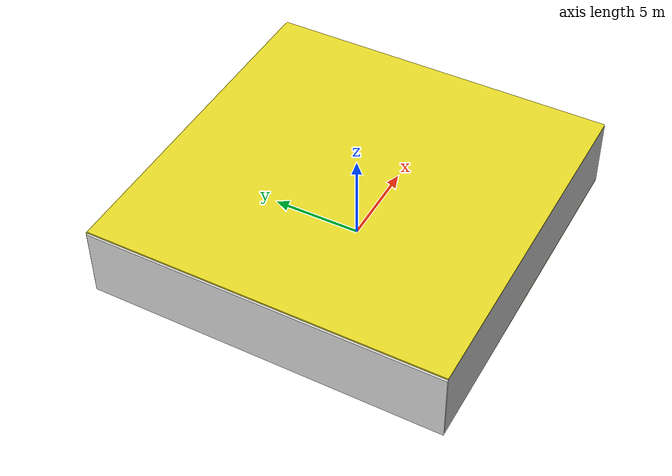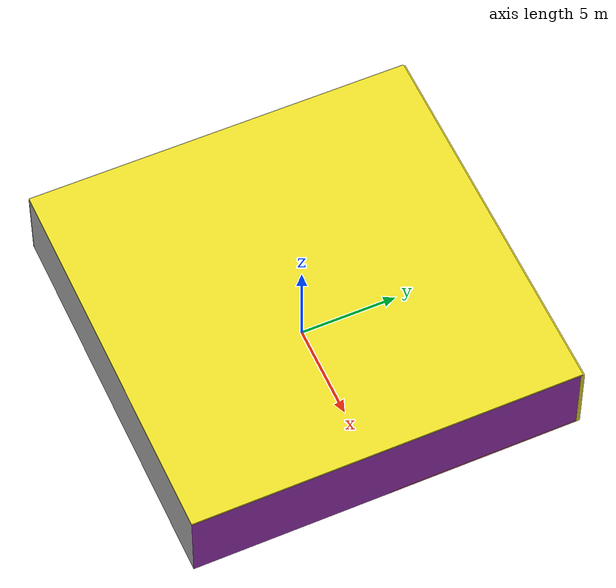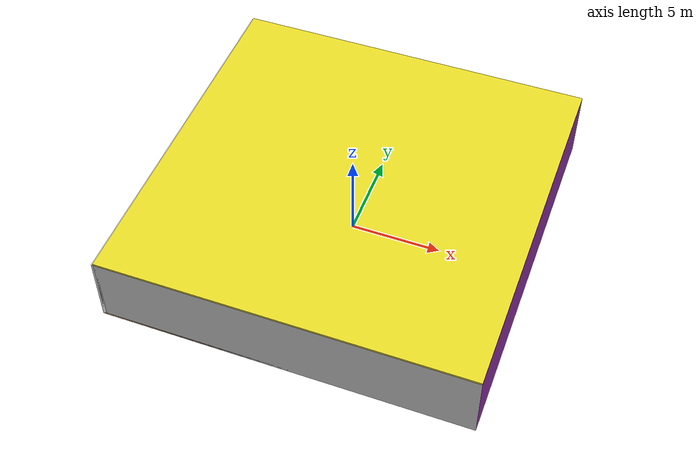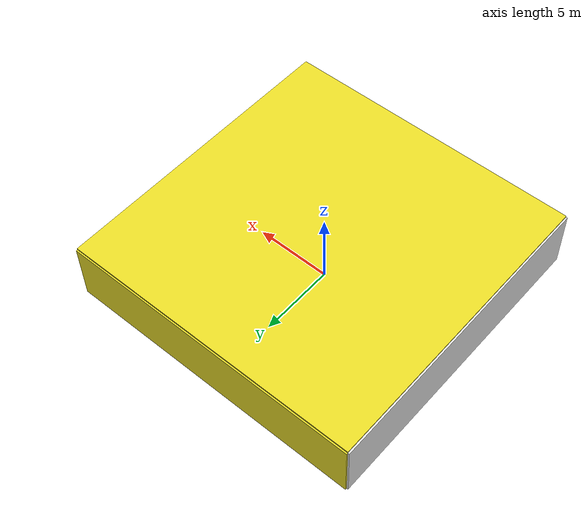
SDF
<sdf version="1.4">
 <world name="default">
  <physics type="ode">
   <max_step_size>0.001</max_step_size>
   <real_time_factor>1</real_time_factor>
   <real_time_update_rate>1000</real_time_update_rate>
   <gravity>0 0 -9.8</gravity>
  </physics>
  <scene><ambient>0.4 0.4 0.4 1</ambient><background>0.7 0.7 0.7 1</background><shadows>1</shadows></scene>
  <model name="Surrounding">
   <static>1</static>
   <link name="Ceiling">
    <collision name="Ceiling_Collision"><geometry><box><size>20 20 0.1</size></box></geometry></collision>
    <visual name="Ceiling_Visual">
     <geometry><box><size>20 20 0.1</size></box></geometry>
     <material>
      <script><uri>file://media/materials/scripts/gazebo.material</uri><name>Gazebo/Yellow</name></script>
     </material>
    </visual>
    <pose>0 0 4.05 0 0 0</pose>
   </link>
   <link name="Wall_South">
    <collision name="Wall_South_Collision">
     <geometry><box><size>20 0 4</size></box></geometry>
     <pose>0 0 2 0 -0 0</pose>
    </collision>
    <visual name="Wall_South_Visual">
     <pose>0 0 2 0 -0 0</pose>
     <geometry><box><size>20 0 4</size></box></geometry>
     <material>
      <script><uri>file://media/materials/scripts/gazebo.material</uri><name>Gazebo/LightOff</name></script>
     </material>
    </visual>
    <velocity_decay><linear>0</linear><angular>0</angular></velocity_decay>
    <pose>0 -10 0 0 -0 0</pose>
   </link>
   <link name="Wall_East">
    <collision name="Wall_21_Collision">
     <geometry><box><size>20 0 4</size></box></geometry>
     <pose>0 0 2 0 -0 0</pose>
    </collision>
    <visual name="Wall_21_Visual">
     <pose>0 0 2 0 -0 0</pose>
     <geometry><box><size>20 0 4</size></box></geometry>
     <material>
      <script><uri>file://media/materials/scripts/gazebo.material</uri><name>Gazebo/PurpleGlow</name></script>
     </material>
    </visual>
    <velocity_decay><linear>0</linear><angular>0</angular></velocity_decay>
    <pose>10 0 0 0 -0 1.5708</pose>
   </link>
   <link name="Wall_North">
    <collision name="Wall_22_Collision">
     <geometry><box><size>20 0.2 4</size></box></geometry>
     <pose>0 0 2 0 -0 0</pose>
    </collision>
    <visual name="Wall_22_Visual">
     <pose>0 0 2 0 -0 0</pose>
     <geometry><box><size>20 0.2 4</size></box></geometry>
     <material>
      <script><uri>file://media/materials/scripts/gazebo.material</uri><name>Gazebo/YellowGlow</name></script>
     </material>
    </visual>
    <velocity_decay><linear>0</linear><angular>0</angular></velocity_decay>
    <pose>0 10 0 0 -0 0</pose>
   </link>
   <link name="Wall_West">
    <collision name="Wall_23_Collision">
     <geometry><box><size>20 0.2 4</size></box></geometry>
     <pose>0 0 2 0 -0 0</pose>
    </collision>
    <visual name="Wall_23_Visual">
     <pose>0 0 2 0 -0 0</pose>
     <geometry><box><size>20 0.2 4</size></box></geometry>
     <material>
      <script><uri>file://media/materials/scripts/gazebo.material</uri><name>Gazebo/White</name></script>
     </material>
    </visual>
    <velocity_decay><linear>0</linear><angular>0</angular></velocity_decay>
    <pose>-10 0 0 0 0 -1.5708</pose>
   </link>
   <link name="Ground_link">
    <collision name="collision">
     <pose>0 0 .05 0 -0 0</pose>
     <geometry><box><size>20 20 0.1</size></box></geometry>
    </collision>
    <visual name="visual">
     <pose>0 0 .05 0 -0 0</pose>
     <geometry><box><size>20 20 0.1</size></box></geometry>
     <material>
      <script>
       <uri>file://media/materials/scripts/gazebo.material</uri>
       <name>Gazebo/OrangeTransparent</name>
      </script>
     </material>
    </visual>
   </link>
   <static>1</static>
  </model>
  <spherical_coordinates>
   <surface_model>EARTH_WGS84</surface_model>
   <latitude_deg>0</latitude_deg>
   <longitude_deg>0</longitude_deg>
   <elevation>0</elevation>
   <heading_deg>0</heading_deg>
  </spherical_coordinates>
  <light name="lightball_0" type="diffuse">
   <diffuse>0.8 0.8 0.8 1</diffuse>
   <specular>0.2 0.2 0.2 1</specular>
   <attenuation>
    <range>100</range>
    <constant>0.7</constant>
    <linear>0.01</linear>
    <quadratic>0.001</quadratic>
   </attenuation>
   <direction>-0.5 0.1 -0.9</direction>
   <pose>6.37756274964 -2.22767772751 1.49442714087 0 0 0</pose>
  </light>
  <light name="lightball_1" type="diffuse">
   <diffuse>0.8 0.8 0.8 1</diffuse>
   <specular>0.2 0.2 0.2 1</specular>
   <attenuation>
    <range>100</range>
    <constant>0.7</constant>
    <linear>0.01</linear>
    <quadratic>0.001</quadratic>
   </attenuation>
   <direction>-0.5 0.1 -0.9</direction>
   <pose>6.59061463276 0.991211291404 1.21982046368 0 0 0</pose>
  </light>
  <light name="lightball_2" type="diffuse">
   <diffuse>0.8 0.8 0.8 1</diffuse>
   <specular>0.2 0.2 0.2 1</specular>
   <attenuation>
    <range>100</range>
    <constant>0.7</constant>
    <linear>0.01</linear>
    <quadratic>0.001</quadratic>
   </attenuation>
   <direction>-0.5 0.1 -0.9</direction>
   <pose>-7.8956147705 -5.67664634946 0.542450574673 0 0 0</pose>
  </light>
  <light name="lightball_3" type="diffuse">
   <diffuse>0.8 0.8 0.8 1</diffuse>
   <specular>0.2 0.2 0.2 1</specular>
   <attenuation>
    <range>100</range>
    <constant>0.7</constant>
    <linear>0.01</linear>
    <quadratic>0.001</quadratic>
   </attenuation>
   <direction>-0.5 0.1 -0.9</direction>
   <pose>-4.17408244098 0.0603243719734 0.504375381635 0 0 0</pose>
  </light>
  <include>
   <uri>model://construction_cone</uri>
   <pose>-7.02871439463 -1.89166733314 0 0 0 1.97578064138</pose>
  </include>
  <include><uri>model://cabinet</uri><pose>-5.07136797571 6.73698509179 0 0 0 1.6457153198</pose></include>
  <include><uri>model://cabinet</uri><pose>-1.11486556335 -7.50120758137 0 0 0 1.22232984903</pose></include>
  <include>
   <uri>model://construction_cone</uri>
   <pose>2.2668637855 -2.27344132406 0 0 0 2.7142140386</pose>
  </include>
  <include><uri>model://table</uri><pose>4.43549336979 -0.799292132873 0 0 0 2.85717007217</pose></include>
  <include>
   <uri>model://robocup_3Dsim_goal</uri>
   <pose>7.11583630695 -4.70413697431 0 0 0 0.658119439017</pose>
  </include>
  <include>
   <uri>model://robocup_3Dsim_goal</uri>
   <pose>7.22499338822 1.10694671115 0 0 0 0.811607980989</pose>
  </include>
  <include><uri>model://cabinet</uri><pose>6.79475230456 6.91214922118 0 0 0 1.23827881853</pose></include>
 </world>
</sdf>

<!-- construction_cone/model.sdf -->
<sdf version="1.5">
  <model name="Construction Cone">
    <link name="link">
      <collision name="collision">
        <geometry>
          <mesh>
            <scale>10 10 10</scale>
            <uri>file://isr-testbed/construction_cone/meshes/construction_cone.dae</uri>
          </mesh>
        </geometry>
      </collision>
      <visual name="visual">
        <geometry>
          <mesh>
            <scale>10 10 10</scale>
            <uri>file://isr-testbed/construction_cone/meshes/construction_cone.dae</uri>
          </mesh>
        </geometry>
      </visual>
    </link>
  </model>
</sdf>

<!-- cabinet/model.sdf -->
<sdf version="1.5">
  <model name="cabinet">
    <static>true</static>
    <link name="cabinet_bottom_plate">
      <inertial>
        <pose>0 0 -1 0 0 0</pose>
        <inertia>
          <ixx>2.050000</ixx>
          <ixy>0</ixy>
          <ixz>0</ixz>
          <iyy>2.050000</iyy>
          <iyz>0</iyz>
          <izz>2.050000</izz>
        </inertia>
        <mass>25.000000</mass>
      </inertial>
      <collision name="cabinet_bottom_plate_geom">
        <pose>0 0 0.010000 0 0 0</pose>
        <geometry>
          <box>
            <size>0.450000 0.450000 0.020000</size>
          </box>
        </geometry>
      </collision>
      <visual name="cabinet_bottom_plate_geom_visual">
        <pose>0 0 0.010000 0 0 0</pose>
        <geometry>
          <box>
            <size>0.450000 0.450000 0.020000</size>
          </box>
        </geometry>
        <material>
          <script>
            <uri>model://media/materials/scripts/gazebo.material</uri>
            <name>Gazebo/Wood</name>
          </script>
        </material>
      </visual>
      <collision name="cabinet_bottom_plate_geom_cabinet_back_plate">
        <pose>0.235000 0 0.510000 0 0 0</pose>
        <geometry>
          <box>
            <size>0.020000 0.450000 1.020000</size>
          </box>
        </geometry>
      </collision>
      <visual name="cabinet_bottom_plate_geom_cabinet_back_plate_visual">
        <pose>0.235000 0 0.510000 0 0 0</pose>
        <geometry>
          <box>
            <size>0.020000 0.450000 1.020000</size>
          </box>
        </geometry>
        <material>
          <script>
            <uri>model://media/materials/scripts/gazebo.material</uri>
            <name>Gazebo/Wood</name>
          </script>
        </material>
      </visual>
      <collision name="cabinet_bottom_plate_geom_cabinet_left_plate">
        <pose>0 0.235000 0.510000 0 0 0</pose>
        <geometry>
          <box>
            <size>0.450000 0.020000 1.020000</size>
          </box>
        </geometry>
      </collision>
      <visual name="cabinet_bottom_plate_geom_cabinet_left_plate_visual">
        <pose>0 0.235000 0.510000 0 0 0</pose>
        <geometry>
          <box>
            <size>0.450000 0.020000 1.020000</size>
          </box>
        </geometry>
        <material>
          <script>
            <uri>model://media/materials/scripts/gazebo.material</uri>
            <name>Gazebo/Wood</name>
          </script>
        </material>
      </visual>
      <collision name="cabinet_bottom_plate_geom_cabinet_middle_plate">
        <pose>0 0 0.510000 0 0 0</pose>
        <geometry>
          <box>
            <size>0.450000 0.450000 0.020000</size>
          </box>
        </geometry>
      </collision>
      <visual name="cabinet_bottom_plate_geom_cabinet_middle_plate_visual">
        <pose>0 0 0.510000 0 0 0</pose>
        <geometry>
          <box>
            <size>0.450000 0.450000 0.020000</size>
          </box>
        </geometry>
        <material>
          <script>
            <uri>model://media/materials/scripts/gazebo.material</uri>
            <name>Gazebo/Wood</name>
          </script>
        </material>
      </visual>
      <collision name="cabinet_bottom_plate_geom_cabinet_right_plate">
        <pose>0 -0.235000 0.510000 0 0 0</pose>
        <geometry>
          <box>
            <size>0.450000 0.020000 1.020000</size>
          </box>
        </geometry>
      </collision>
      <visual name="cabinet_bottom_plate_geom_cabinet_right_plate_visual">
        <pose>0 -0.235000 0.510000 0 0 0</pose>
        <geometry>
          <box>
            <size>0.450000 0.020000 1.020000</size>
          </box>
        </geometry>
        <material>
          <script>
            <uri>model://media/materials/scripts/gazebo.material</uri>
            <name>Gazebo/Wood</name>
          </script>
        </material>
      </visual>
      <collision name="cabinet_bottom_plate_geom_cabinet_top_plate">
        <pose>0 0 1.010000 0 0 0</pose>
        <geometry>
          <box>
            <size>0.450000 0.450000 0.020000</size>
          </box>
        </geometry>
      </collision>
      <visual name="cabinet_bottom_plate_geom_cabinet_top_plate_visual">
        <pose>0 0 1.010000 0 0 0</pose>
        <geometry>
          <box>
            <size>0.450000 0.450000 0.020000</size>
          </box>
        </geometry>
        <material>
          <script>
            <uri>model://media/materials/scripts/gazebo.material</uri>
            <name>Gazebo/Wood</name>
          </script>
        </material>
      </visual>
    </link>
  </model>
</sdf>

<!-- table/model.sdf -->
<sdf version="1.5">
  <model name="table">
    <static>true</static>
    <link name="link">
      <collision name="surface">
        <pose>0 0 1.0 0 0 0</pose>
        <geometry>
          <box>
            <size>1.5 0.8 0.03</size>
          </box>
        </geometry>
        <surface>
          <friction>
            <ode>
              <mu>0.6</mu>
              <mu2>0.6</mu2>
            </ode>
          </friction>
        </surface>
      </collision>
      <visual name="visual1">
        <pose>0 0 1.0 0 0 0</pose>
        <geometry>
          <box>
            <size>1.5 0.8 0.03</size>
          </box>
        </geometry>
        <material>
          <script>
            <uri>model://media/materials/scripts/gazebo.material</uri>
            <name>Gazebo/Wood</name>
          </script>
        </material>
      </visual>
      <collision name="front_left_leg">
        <pose>0.68 0.38 0.5 0 0 0</pose>
        <geometry>
          <cylinder>
            <radius>0.02</radius>
            <length>1.0</length>
          </cylinder>
        </geometry>
      </collision>
      <visual name="front_left_leg">
        <pose>0.68 0.38 0.5 0 0 0</pose>
        <geometry>
          <cylinder>
            <radius>0.02</radius>
            <length>1.0</length>
          </cylinder>
        </geometry>
        <material>
          <script>
            <uri>model://media/materials/scripts/gazebo.material</uri>
            <name>Gazebo/Grey</name>
          </script>
        </material>
      </visual>
      <collision name="front_right_leg">
        <pose>0.68 -0.38 0.5 0 0 0</pose>
        <geometry>
          <cylinder>
            <radius>0.02</radius>
            <length>1.0</length>
          </cylinder>
        </geometry>
      </collision>
      <visual name="front_right_leg">
        <pose>0.68 -0.38 0.5 0 0 0</pose>
        <geometry>
          <cylinder>
            <radius>0.02</radius>
            <length>1.0</length>
          </cylinder>
        </geometry>
        <material>
          <script>
            <uri>model://media/materials/scripts/gazebo.material</uri>
            <name>Gazebo/Grey</name>
          </script>
        </material>
      </visual>
      <collision name="back_right_leg">
        <pose>-0.68 -0.38 0.5 0 0 0</pose>
        <geometry>
          <cylinder>
            <radius>0.02</radius>
            <length>1.0</length>
          </cylinder>
        </geometry>
      </collision>
      <visual name="back_right_leg">
        <pose>-0.68 -0.38 0.5 0 0 0</pose>
        <geometry>
          <cylinder>
            <radius>0.02</radius>
            <length>1.0</length>
          </cylinder>
        </geometry>
        <material>
          <script>
            <uri>model://media/materials/scripts/gazebo.material</uri>
            <name>Gazebo/Grey</name>
          </script>
        </material>
      </visual>
      <collision name="back_left_leg">
        <pose>-0.68 0.38 0.5 0 0 0</pose>
        <geometry>
          <cylinder>
            <radius>0.02</radius>
            <length>1.0</length>
          </cylinder>
        </geometry>
      </collision>
      <visual name="back_left_leg">
        <pose>-0.68 0.38 0.5 0 0 0</pose>
        <geometry>
          <cylinder>
            <radius>0.02</radius>
            <length>1.0</length>
          </cylinder>
        </geometry>
        <material>
          <script>
            <uri>model://media/materials/scripts/gazebo.material</uri>
            <name>Gazebo/Grey</name>
          </script>
        </material>
      </visual>
    </link>
  </model>
</sdf>

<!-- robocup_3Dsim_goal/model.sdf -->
<sdf version="1.5">
  <model name="robocup_3d_goal">
    <static>true</static>
    <link name="left_post">
      <pose>0 1.05 0.45 0 0 0</pose>
      <collision name="collision">
        <geometry>
          <cylinder>
            <radius>0.05</radius>
            <length>0.9</length>
          </cylinder>
        </geometry>
      </collision>
      <visual name="visual">
        <geometry>
          <cylinder>
            <radius>0.05</radius>
            <length>0.9</length>
          </cylinder>
        </geometry>
        <material>
          <script>
            <uri>file://media/materials/scripts/gazebo.material</uri>
            <name>Gazebo/ZincYellow</name>
          </script>
        </material>
      </visual>
    </link>
    <link name="left_support_horiz_lower">
      <pose>0.30 1.05 0.01 0 0 0</pose>
      <collision name="collision">
        <geometry>
          <box>
            <size>0.50 0.02 0.02</size>
          </box>
        </geometry>
      </collision>
      <visual name="visual">
        <geometry>
          <box>
            <size>0.50 0.02 0.02</size>
          </box>
        </geometry>
        <material>
          <script>
            <uri>file://media/materials/scripts/gazebo.material</uri>
            <name>Gazebo/White</name>
          </script>
        </material>
      </visual>
    </link>
    <link name="left_support_horiz_upper">
      <pose>0.30 1.05 0.79 0 0 0</pose>
      <collision name="collision">
        <geometry>
          <box>
            <size>0.50 0.02 0.02</size>
          </box>
        </geometry>
      </collision>
      <visual name="visual">
        <geometry>
          <box>
            <size>0.50 0.02 0.02</size>
          </box>
        </geometry>
        <material>
          <script>
            <uri>file://media/materials/scripts/gazebo.material</uri>
            <name>Gazebo/White</name>
          </script>
        </material>
      </visual>
    </link>
    <link name="left_support_vertical">
      <pose>0.56 1.05 0.4 0 1.5708 0</pose>
      <collision name="collision">
        <geometry>
          <box>
            <size>0.80 0.02 0.02</size>
          </box>
        </geometry>
      </collision>
      <visual name="visual">
        <geometry>
          <box>
            <size>0.80 0.02 0.02</size>
          </box>
        </geometry>
        <material>
          <script>
            <uri>file://media/materials/scripts/gazebo.material</uri>
            <name>Gazebo/White</name>
          </script>
        </material>
      </visual>
    </link>
    <link name="right_support_horiz_lower">
      <pose>0.30 -1.05 0.01 0 0 0</pose>
      <collision name="collision">
        <geometry>
          <box>
            <size>0.50 0.02 0.02</size>
          </box>
        </geometry>
      </collision>
      <visual name="visual">
        <geometry>
          <box>
            <size>0.50 0.02 0.02</size>
          </box>
        </geometry>
        <material>
          <script>
            <uri>file://media/materials/scripts/gazebo.material</uri>
            <name>Gazebo/White</name>
          </script>
        </material>
      </visual>
    </link>
    <link name="right_support_horiz_upper">
      <pose>0.30 -1.05 0.79 0 0 0</pose>
      <collision name="collision">
        <geometry>
          <box>
            <size>0.50 0.02 0.02</size>
          </box>
        </geometry>
      </collision>
      <visual name="visual">
        <geometry>
          <box>
            <size>0.50 0.02 0.02</size>
          </box>
        </geometry>
        <material>
          <script>
            <uri>file://media/materials/scripts/gazebo.material</uri>
            <name>Gazebo/White</name>
          </script>
        </material>
      </visual>
    </link>
    <link name="right_support_vertical">
      <pose>0.56 -1.05 0.4 0 1.5708 0</pose>
      <collision name="collision">
        <geometry>
          <box>
            <size>0.80 0.02 0.02</size>
          </box>
        </geometry>
      </collision>
      <visual name="visual">
        <geometry>
          <box>
            <size>0.80 0.02 0.02</size>
          </box>
        </geometry>
        <material>
          <script>
            <uri>file://media/materials/scripts/gazebo.material</uri>
            <name>Gazebo/White</name>
          </script>
        </material>
      </visual>
    </link>
    <link name="center_support_horiz_lower">
      <pose>0.56 0 0.01 0 1.5708 0</pose>
      <collision name="collision">
        <geometry>
          <box>
            <size>0.02 2.08 0.02</size>
          </box>
        </geometry>
      </collision>
      <visual name="visual">
        <geometry>
          <box>
            <size>0.02 2.08 0.02</size>
          </box>
        </geometry>
        <material>
          <script>
            <uri>file://media/materials/scripts/gazebo.material</uri>
            <name>Gazebo/White</name>
          </script>
        </material>
      </visual>
    </link>
    <link name="center_support_horiz_upper">
      <pose>0.56 0 0.79 0 1.5708 0</pose>
      <collision name="collision">
        <geometry>
          <box>
            <size>0.02 2.08 0.02</size>
          </box>
        </geometry>
      </collision>
      <visual name="visual">
        <geometry>
          <box>
            <size>0.02 2.08 0.02</size>
          </box>
        </geometry>
        <material>
          <script>
            <uri>file://media/materials/scripts/gazebo.material</uri>
            <name>Gazebo/White</name>
          </script>
        </material>
      </visual>
    </link>
    <link name="right_post">
      <pose>0 -1.05 0.45 0 0 0</pose>
      <collision name="collision">
        <geometry>
          <cylinder>
            <radius>0.05</radius>
            <length>0.9</length>
          </cylinder>
        </geometry>
      </collision>
      <visual name="visual">
        <geometry>
          <cylinder>
            <radius>0.05</radius>
            <length>0.9</length>
          </cylinder>
        </geometry>
        <material>
          <script>
            <uri>file://media/materials/scripts/gazebo.material</uri>
            <name>Gazebo/ZincYellow</name>
          </script>
        </material>
      </visual>
    </link>
    <link name="crossbar">
      <pose>0 0 0.85 1.57 1.57 0</pose>
      <collision name="collision">
        <geometry>
          <cylinder>
            <radius>0.05</radius>
            <length>2.0</length>
          </cylinder>
        </geometry>
      </collision>
      <visual name="visual">
        <geometry>
          <cylinder>
            <radius>0.05</radius>
            <length>2.0</length>
          </cylinder>
        </geometry>
        <material>
          <script>
            <uri>file://media/materials/scripts/gazebo.material</uri>
            <name>Gazebo/ZincYellow</name>
          </script>
        </material>
      </visual>
    </link>
    <link name="center_net">
      <pose>0.56 0 0.40 0 0 0</pose>
      <collision name="collision">
        <geometry>
          <box>
            <size>0.01 2.1 0.80</size>
          </box>
        </geometry>
      </collision>
      <visual name="visual">
        <geometry>
          <box>
            <size>0.01 2.1 0.80</size>
          </box>
        </geometry>
        <material>
          <script>
            <uri>model://../model_source/models/robocup09_spl_field/materials/scripts/</uri>
            <uri>model://../model_source/models/robocup09_spl_field/materials/textures/</uri>
            <name>RoboCup/Net</name>
          </script>
        </material>
      </visual>
    </link>
    <link name="left_net">
      <pose>0.30 1.05 0.40 0 0 0</pose>
      <collision name="collision">
        <geometry>
          <box>
            <size>0.50 0.01 0.76</size>
          </box>
        </geometry>
      </collision>
      <visual name="visual">
        <geometry>
          <box>
            <size>0.50 0.01 0.76</size>
          </box>
        </geometry>
        <material>
          <script>
            <uri>model://../model_source/models/robocup09_spl_field/materials/scripts/</uri>
            <uri>model://../model_source/models/robocup09_spl_field/materials/textures/</uri>
            <name>RoboCup/Net</name>
          </script>
        </material>
      </visual>
    </link>
    <link name="right_net">
      <pose>0.30 -1.05 0.40 0 0 0</pose>
      <collision name="collision">
        <geometry>
          <box>
            <size>0.50 0.01 0.76</size>
          </box>
        </geometry>
      </collision>
      <visual name="visual">
        <geometry>
          <box>
            <size>0.50 0.01 0.76</size>
          </box>
        </geometry>
        <material>
          <script>
            <uri>model://../model_source/models/robocup09_spl_field/materials/scripts/</uri>
            <uri>model://../model_source/models/robocup09_spl_field/materials/textures/</uri>
            <name>RoboCup/Net</name>
          </script>
        </material>
      </visual>
    </link>
  </model>
</sdf>
